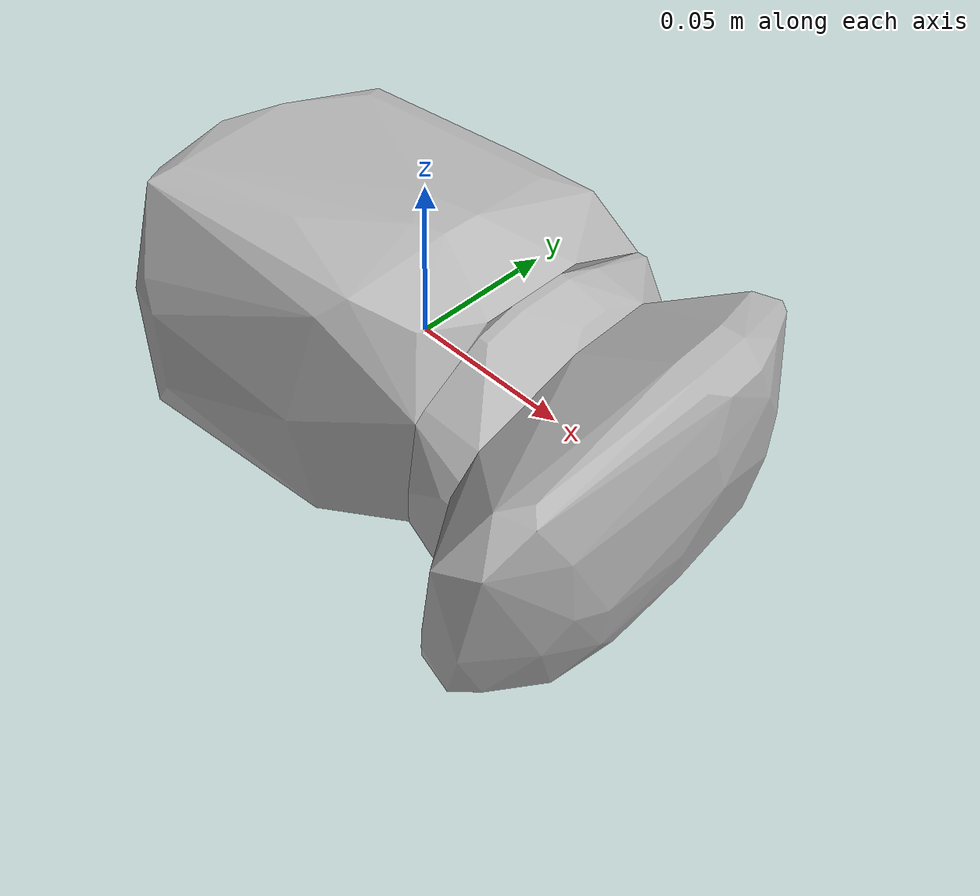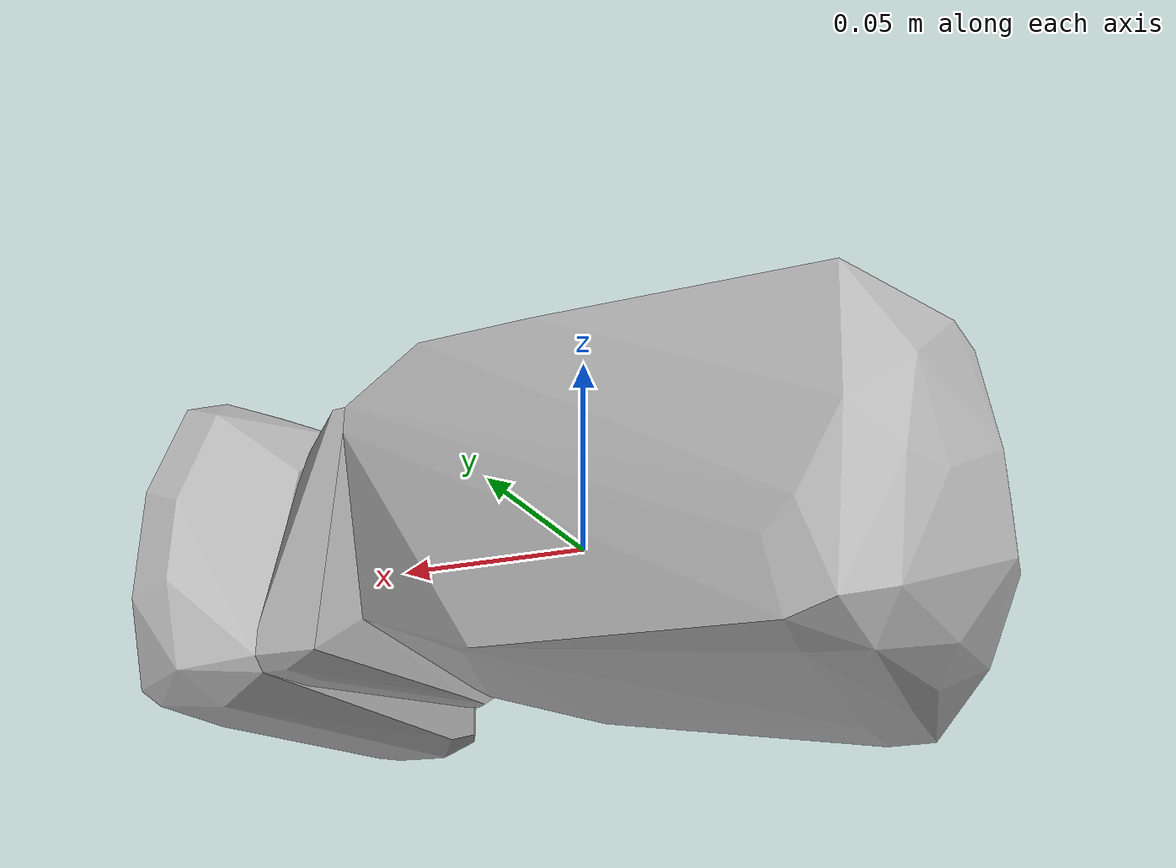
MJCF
<?xml version="1.0" ?>
<mujoco model="agod_21760">
  <asset>
    <material name="default_material" specular="0.5" shininess="0.25" rgba="0.7 0.7 0.7 1"/>
    <mesh name="convex_0_vis" file="visual/convex_0.obj" scale="1.0 1.0 1.0"/>
    <mesh name="convex_0_coll" file="collision/convex_0_coll.obj" scale="1.0 1.0 1.0"/>
    <mesh name="convex_1_vis" file="visual/convex_1.obj" scale="1.0 1.0 1.0"/>
    <mesh name="convex_1_coll" file="collision/convex_1_coll.obj" scale="1.0 1.0 1.0"/>
    <mesh name="convex_2_vis" file="visual/convex_2.obj" scale="1.0 1.0 1.0"/>
    <mesh name="convex_2_coll" file="collision/convex_2_coll.obj" scale="1.0 1.0 1.0"/>
  </asset>
  <worldbody>
    <body>
      <body name="object">
        <!-- Visual Geometry -->
        <!-- Collision Geometry -->
        <geom type="mesh" mesh="convex_0_vis" material="default_material" conaffinity="0" contype="0" group="1"/>
        <geom type="mesh" mesh="convex_0_coll" solimp="0.998 0.998 0.001" solref="0.001 1" density="100" friction="0.95 0.3 0.1" group="0" rgba="0.8 0.8 0.8 0.0"/>
        <geom type="mesh" mesh="convex_1_vis" material="default_material" conaffinity="0" contype="0" group="1"/>
        <geom type="mesh" mesh="convex_1_coll" solimp="0.998 0.998 0.001" solref="0.001 1" density="100" friction="0.95 0.3 0.1" group="0" rgba="0.8 0.8 0.8 0.0"/>
        <geom type="mesh" mesh="convex_2_vis" material="default_material" conaffinity="0" contype="0" group="1"/>
        <geom type="mesh" mesh="convex_2_coll" solimp="0.998 0.998 0.001" solref="0.001 1" density="100" friction="0.95 0.3 0.1" group="0" rgba="0.8 0.8 0.8 0.0"/>
      </body>
      <site rgba="0 0 0 0" size="0.005" name="bottom_site" pos="0.00000 0.00000 -0.04385"/>
      <site rgba="0 0 0 0" size="0.005" name="top_site" pos="0.00000 0.00000 0.04385"/>
      <site rgba="0 0 0 0" size="0.005" name="horizontal_radius_site" pos="0.09676 0.06198 0.00000"/>
    </body>
  </worldbody>
</mujoco>
